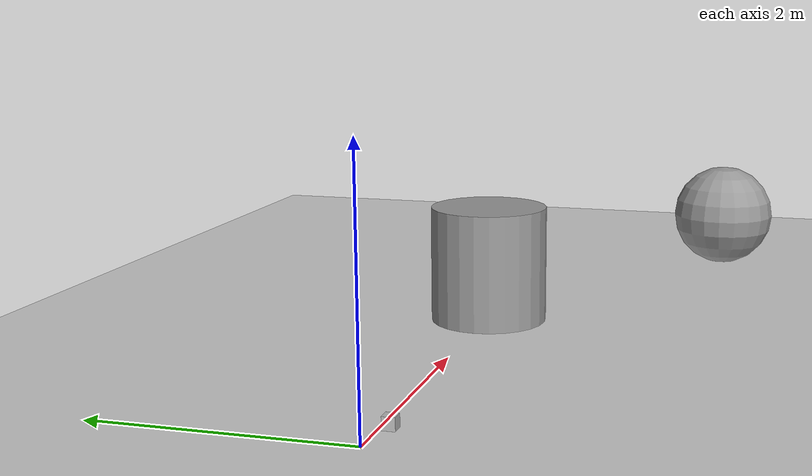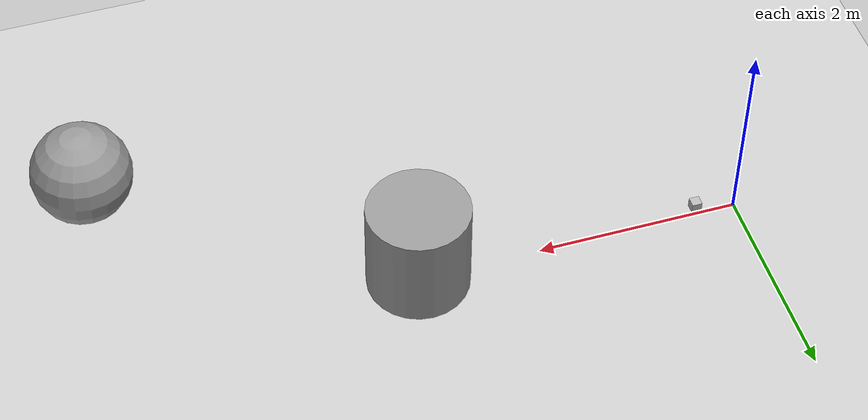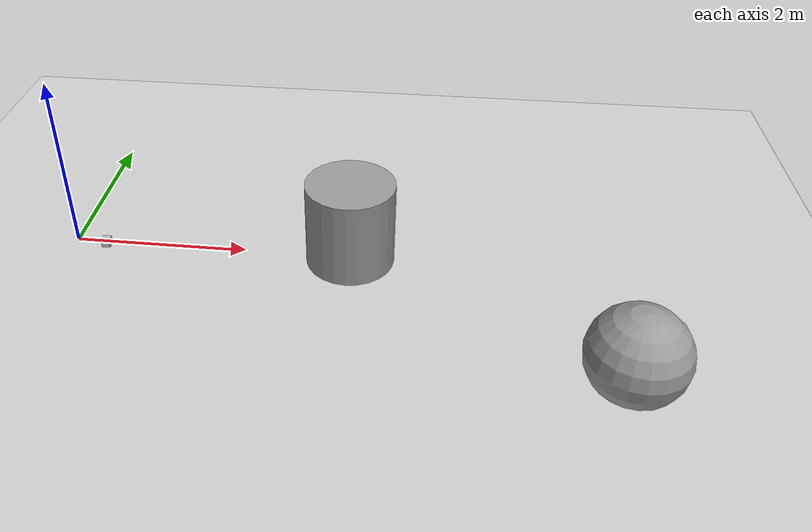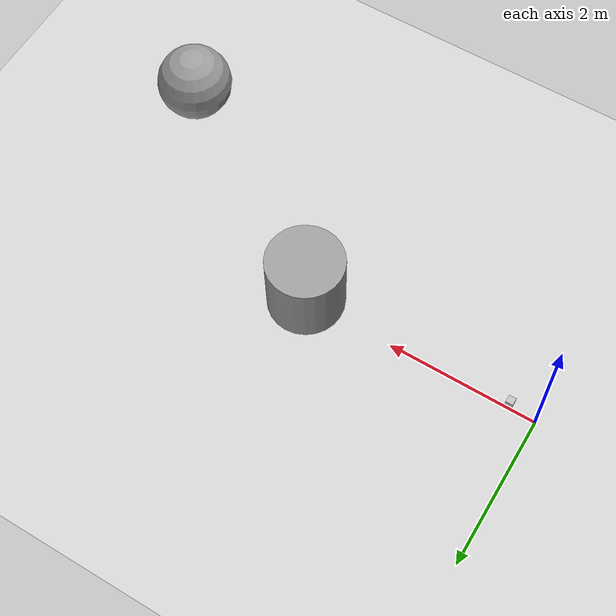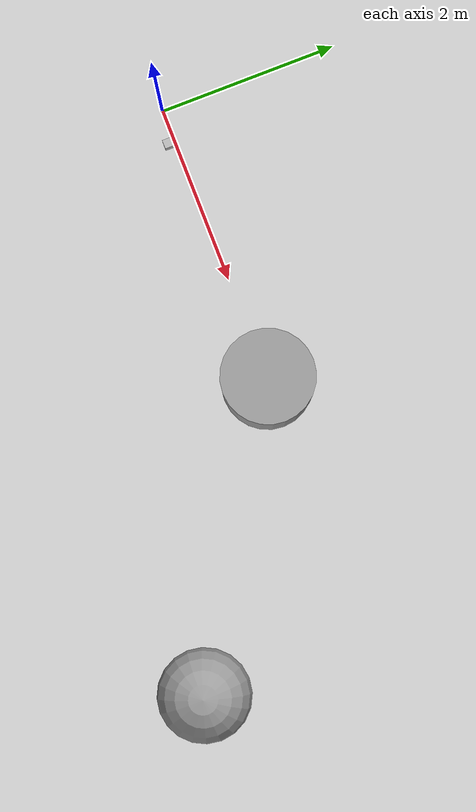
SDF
<sdf version="1.6">
 <world name="default">
  <light name="sun" type="directional">
   <pose>0 0 10 0 -0 0</pose>
   <diffuse>0.8 0.8 0.8 1</diffuse>
   <specular>0.2 0.2 0.2 1</specular>
   <attenuation>
    <range>1000</range>
    <constant>0.9</constant>
    <linear>0.01</linear>
    <quadratic>0.001</quadratic>
   </attenuation>
   <direction>-0.5 0.1 -0.9</direction>
  </light>
  <model name="ground_plane">
   <static>1</static>
   <link name="link">
    <collision name="collision">
     <geometry><plane><normal>0 0 1</normal><size>100 100</size></plane></geometry>
     <surface><friction><ode><mu>100</mu><mu2>50</mu2></ode></friction></surface>
    </collision>
    <visual name="visual">
     <cast_shadows>0</cast_shadows>
     <geometry><plane><normal>0 0 1</normal><size>100 100</size></plane></geometry>
     <material>
      <script><uri>file://media/materials/scripts/gazebo.material</uri><name>Gazebo/Grey</name></script>
     </material>
    </visual>
   </link>
  </model>
  <gravity>0 0 -9.8</gravity>
  <magnetic_field>6e-06 2.3e-05 -4.2e-05</magnetic_field>
  <atmosphere type="adiabatic"/>
  <physics name="default_physics" default="0" type="ode">
   <max_step_size>0.001</max_step_size>
   <real_time_factor>1</real_time_factor>
   <real_time_update_rate>1000</real_time_update_rate>
  </physics>
  <scene><ambient>0.4 0.4 0.4 1</ambient><background>0.7 0.7 0.7 1</background><shadows>1</shadows></scene>
  <spherical_coordinates>
   <surface_model>EARTH_WGS84</surface_model>
   <latitude_deg>0</latitude_deg>
   <longitude_deg>0</longitude_deg>
   <elevation>0</elevation>
   <heading_deg>0</heading_deg>
  </spherical_coordinates>
  <model name="unit_cylinder">
   <pose>3.21617 -0.020116 0.499997 3e-06 4e-06 -0</pose>
   <link name="link">
    <inertial>
     <mass>1</mass>
     <inertia><ixx>0.145833</ixx><ixy>0</ixy><ixz>0</ixz><iyy>0.145833</iyy><iyz>0</iyz><izz>0.125</izz></inertia>
    </inertial>
    <collision name="collision">
     <geometry><cylinder><radius>0.5</radius><length>1</length></cylinder></geometry>
    </collision>
    <visual name="visual">
     <geometry><cylinder><radius>0.5</radius><length>1</length></cylinder></geometry>
     <material>
      <script><name>Gazebo/Grey</name><uri>file://media/materials/scripts/gazebo.material</uri></script>
     </material>
    </visual>
   </link>
  </model>
  <model name="unit_sphere">
   <pose>6.04935 -1.83048 0.5 0 -0 0</pose>
   <link name="link">
    <inertial>
     <mass>1</mass>
     <inertia><ixx>0.1</ixx><ixy>0</ixy><ixz>0</ixz><iyy>0.1</iyy><iyz>0</iyz><izz>0.1</izz></inertia>
    </inertial>
    <collision name="collision"><geometry><sphere><radius>0.5</radius></sphere></geometry></collision>
    <visual name="visual">
     <geometry><sphere><radius>0.5</radius></sphere></geometry>
     <material>
      <script><name>Gazebo/Grey</name><uri>file://media/materials/scripts/gazebo.material</uri></script>
     </material>
    </visual>
   </link>
  </model>
  <model name="stereo_plug">
   <link name="link">
    <pose>0.05 0.05 0.05 0 -0 0</pose>
    <inertial>
     <mass>0.1</mass>
     <inertia>
      <ixx>0.000166667</ixx>
      <iyy>0.000166667</iyy>
      <izz>0.000166667</izz>
      <ixy>0</ixy>
      <ixz>0</ixz>
      <iyz>0</iyz>
     </inertia>
    </inertial>
    <sensor name="camera" type="multicamera">
     <always_on>1</always_on>
     <update_rate>30</update_rate>
     <visualize>0</visualize>
     <camera name="left">
      <pose>0 0.2 0 0 -0 0</pose>
      <horizontal_fov>1.047</horizontal_fov>
      <image><width>320</width><height>240</height></image>
      <clip><near>0.1</near><far>100</far></clip>
     </camera>
     <camera name="right">
      <pose>0 -0.2 0 0 -0 0</pose>
      <horizontal_fov>1.047</horizontal_fov>
      <image><width>320</width><height>240</height></image>
      <clip><near>0.1</near><far>100</far></clip>
     </camera>
    </sensor>
    <visual name="visual">
     <geometry><box><size>0.1 0.1 0.1</size></box></geometry>
     <material><shader type="pixel"/></material>
    </visual>
    <collision name="collision">
     <geometry><box><size>0.1 0.1 0.1</size></box></geometry>
     <surface>
      <friction>
       <ode><mu>1</mu><mu2>1</mu2><fdir1>0 0 0</fdir1><slip1>0</slip1><slip2>0</slip2></ode>
       <torsional>
        <coefficient>1</coefficient>
        <patch_radius>0</patch_radius>
        <surface_radius>0</surface_radius>
        <use_patch_radius>1</use_patch_radius>
        <ode><slip>0</slip></ode>
       </torsional>
      </friction>
      <bounce><restitution_coefficient>0</restitution_coefficient><threshold>1e+06</threshold></bounce>
      <contact>
       <collide_without_contact>0</collide_without_contact>
       <collide_without_contact_bitmask>1</collide_without_contact_bitmask>
       <collide_bitmask>1</collide_bitmask>
       <ode>
        <soft_cfm>0</soft_cfm>
        <soft_erp>0.2</soft_erp>
        <kp>1e+13</kp>
        <kd>1</kd>
        <max_vel>0.01</max_vel>
        <min_depth>0</min_depth>
       </ode>
       <bullet>
        <split_impulse>1</split_impulse>
        <split_impulse_penetration_threshold>-0.01</split_impulse_penetration_threshold>
        <soft_cfm>0</soft_cfm>
        <soft_erp>0.2</soft_erp>
        <kp>1e+13</kp>
        <kd>1</kd>
       </bullet>
      </contact>
     </surface>
    </collision>
   </link>
   <static>0</static>
   <plugin name="stereo_camera_controller" filename="libgazebo_ros_multicamera.so">
    <alwaysOn>true</alwaysOn>
    <updateRate>0.0</updateRate>
    <cameraName>stereo_plug/link/camera</cameraName>
    <imageTopicName>image_raw</imageTopicName>
    <cameraInfoTopicName>camera_info</cameraInfoTopicName>
    <frameName>left_camera_optical_frame</frameName>
    <hackBaseline>0.07</hackBaseline>
    <distortionK1>0.0</distortionK1>
    <distortionK2>0.0</distortionK2>
    <distortionK3>0.0</distortionK3>
    <distortionT1>0.0</distortionT1>
    <distortionT2>0.0</distortionT2>
   </plugin>
   <pose>0.320644 -0.125634 0 0 -0 6e-06</pose>
  </model>
 </world>
</sdf>
